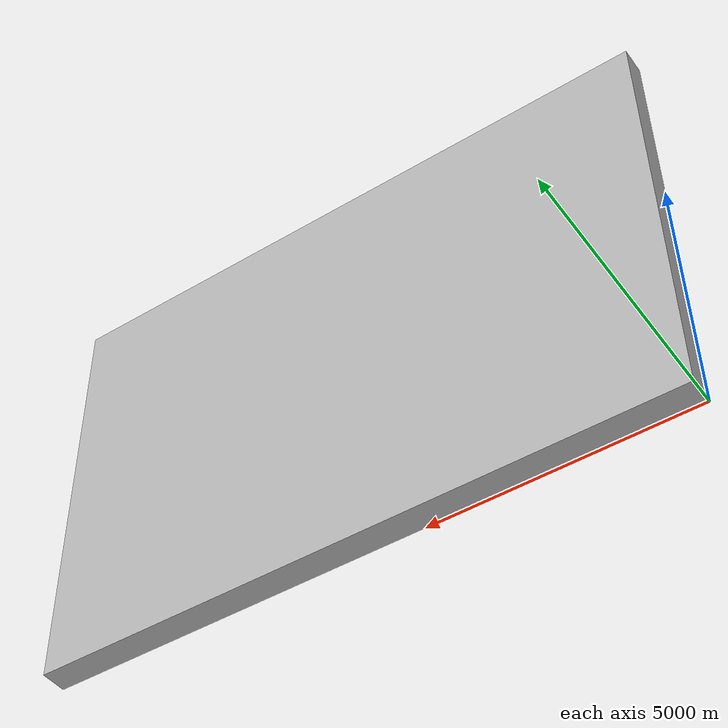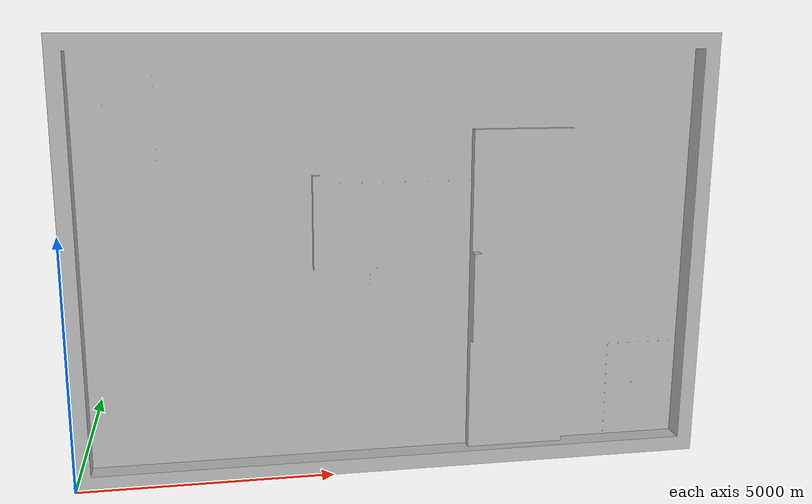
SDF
<?xml version='1.0'?>
<sdf version='1.6'>
  <model name='rmul_2026'>
    <static>true</static>
    <link name='body'>
      <pose frame=''>0 0 0.2 0 0 0</pose>
      <self_collide>0</self_collide>
      <kinematic>0</kinematic>
      <gravity>1</gravity>
      <visual name='visual'>
        <geometry>
          <mesh>
            <uri>model://rmul_2026/meshes/rmul_2026.stl</uri>
            <scale>1 1 1</scale>
          </mesh>
        </geometry>
      </visual>
      <collision name='collision'>
        <geometry>
          <mesh>
            <uri>model://rmul_2026/meshes/rmul_2026.stl</uri>
            <scale>1 1 1</scale>
          </mesh>
        </geometry>
      </collision>
    </link>
  </model>
</sdf>
